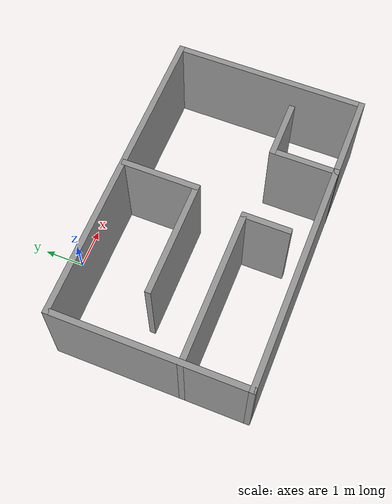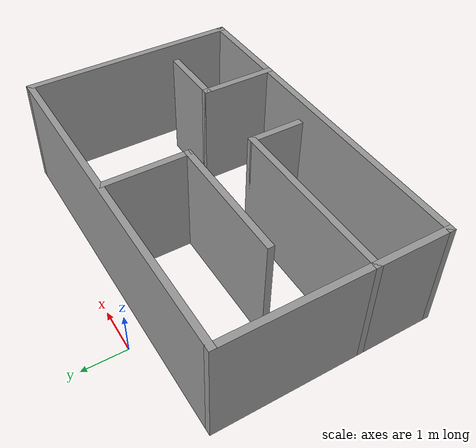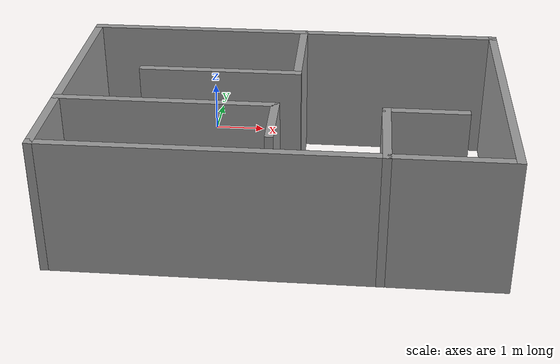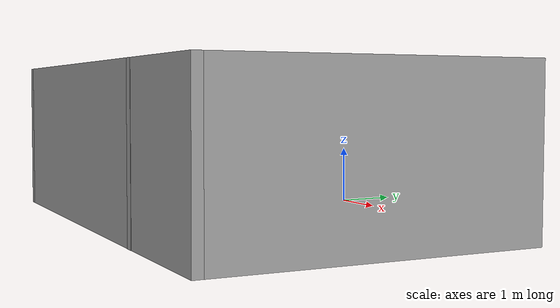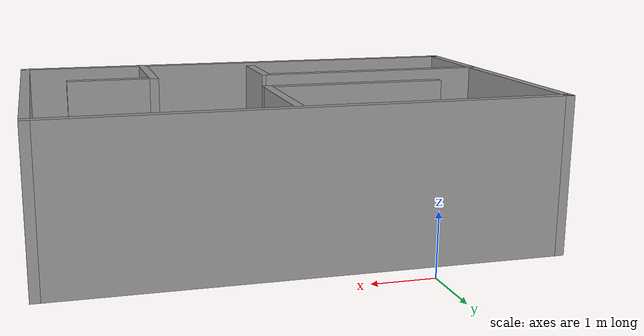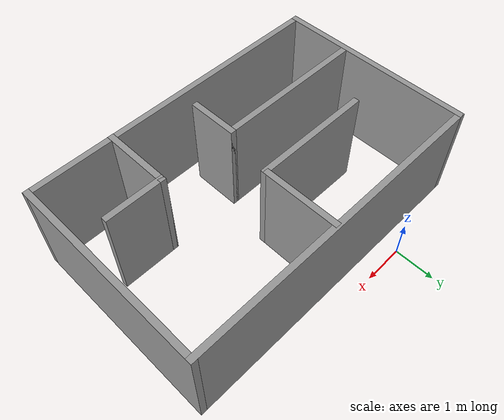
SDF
<?xml version='1.0'?>
<sdf version='1.7'>
  <model name='room'>
    <pose>1.67893 -2.72272 0 0 -0 0</pose>
    <link name='Wall_11'>
      <collision name='Wall_11_Collision'>
        <geometry>
          <box>
            <size>2 0.15 2.5</size>
          </box>
        </geometry>
        <pose>0 0 1.25 0 -0 0</pose>
      </collision>
      <visual name='Wall_11_Visual'>
        <pose>0 0 1.25 0 -0 0</pose>
        <geometry>
          <box>
            <size>2 0.15 2.5</size>
          </box>
        </geometry>
        <material>
          <script>
            <uri>file://media/materials/scripts/gazebo.material</uri>
            <name>Gazebo/Grey</name>
          </script>
          <ambient>1 1 1 1</ambient>
        </material>
        <meta>
          <layer>0</layer>
        </meta>
      </visual>
      <pose>0.214425 1.22795 0 0 -0 -1.5708</pose>
    </link>
    <link name='Wall_12'>
      <collision name='Wall_12_Collision'>
        <geometry>
          <box>
            <size>3 0.15 2.5</size>
          </box>
        </geometry>
        <pose>0 0 1.25 0 -0 0</pose>
      </collision>
      <visual name='Wall_12_Visual'>
        <pose>0 0 1.25 0 -0 0</pose>
        <geometry>
          <box>
            <size>3 0.15 2.5</size>
          </box>
        </geometry>
        <material>
          <script>
            <uri>file://media/materials/scripts/gazebo.material</uri>
            <name>Gazebo/Grey</name>
          </script>
          <ambient>1 1 1 1</ambient>
        </material>
        <meta>
          <layer>0</layer>
        </meta>
      </visual>
      <pose>-1.21057 0.302953 0 0 -0 3.14159</pose>
    </link>
    <link name='Wall_14'>
      <collision name='Wall_14_Collision'>
        <geometry>
          <box>
            <size>4 0.15 2.5</size>
          </box>
        </geometry>
        <pose>0 0 1.25 0 -0 0</pose>
      </collision>
      <visual name='Wall_14_Visual'>
        <pose>0 0 1.25 0 -0 0</pose>
        <geometry>
          <box>
            <size>4 0.15 2.5</size>
          </box>
        </geometry>
        <material>
          <script>
            <uri>file://media/materials/scripts/gazebo.material</uri>
            <name>Gazebo/Grey</name>
          </script>
          <ambient>1 1 1 1</ambient>
        </material>
        <meta>
          <layer>0</layer>
        </meta>
      </visual>
      <pose>-2 -1.00782 0 0 -0 0</pose>
    </link>
    <link name='Wall_15'>
      <collision name='Wall_15_Collision'>
        <geometry>
          <box>
            <size>1.25 0.15 2.5</size>
          </box>
        </geometry>
        <pose>0 0 1.25 0 -0 0</pose>
      </collision>
      <visual name='Wall_15_Visual'>
        <pose>0 0 1.25 0 -0 0</pose>
        <geometry>
          <box>
            <size>1.25 0.15 2.5</size>
          </box>
        </geometry>
        <material>
          <script>
            <uri>file://media/materials/scripts/gazebo.material</uri>
            <name>Gazebo/Grey</name>
          </script>
          <ambient>1 1 1 1</ambient>
        </material>
        <meta>
          <layer>0</layer>
        </meta>
      </visual>
      <pose>-0.075 -1.55782 0 0 -0 -1.5708</pose>
    </link>
    <link name='Wall_17'>
      <collision name='Wall_17_Collision'>
        <geometry>
          <box>
            <size>1.75 0.15 2.5</size>
          </box>
        </geometry>
        <pose>0 0 1.25 0 -0 0</pose>
      </collision>
      <visual name='Wall_17_Visual'>
        <pose>0 0 1.25 0 -0 0</pose>
        <geometry>
          <box>
            <size>1.75 0.15 2.5</size>
          </box>
        </geometry>
        <material>
          <script>
            <uri>file://media/materials/scripts/gazebo.material</uri>
            <name>Gazebo/Grey</name>
          </script>
          <ambient>1 1 1 1</ambient>
        </material>
        <meta>
          <layer>0</layer>
        </meta>
      </visual>
      <pose>1.8411 -1.84772 0 0 -0 1.5708</pose>
    </link>
    <link name='Wall_18'>
      <collision name='Wall_18_Collision'>
        <geometry>
          <box>
            <size>1.5 0.15 2.5</size>
          </box>
        </geometry>
        <pose>0 0 1.25 0 -0 0</pose>
      </collision>
      <visual name='Wall_18_Visual'>
        <pose>0 0 1.25 0 -0 0</pose>
        <geometry>
          <box>
            <size>1.5 0.15 2.5</size>
          </box>
        </geometry>
        <material>
          <script>
            <uri>file://media/materials/scripts/gazebo.material</uri>
            <name>Gazebo/Grey</name>
          </script>
          <ambient>1 1 1 1</ambient>
        </material>
        <meta>
          <layer>0</layer>
        </meta>
      </visual>
      <pose>2.5161 -1.04772 0 0 -0 0</pose>
    </link>
    <link name='Wall_6'>
      <collision name='Wall_6_Collision'>
        <geometry>
          <box>
            <size>8 0.15 2.5</size>
          </box>
        </geometry>
        <pose>0 0 1.25 0 -0 0</pose>
      </collision>
      <visual name='Wall_6_Visual'>
        <pose>0 0 1.25 0 -0 0</pose>
        <geometry>
          <box>
            <size>8 0.15 2.5</size>
          </box>
        </geometry>
        <material>
          <script>
            <uri>file://media/materials/scripts/gazebo.material</uri>
            <name>Gazebo/Grey</name>
          </script>
          <ambient>1 1 1 1</ambient>
        </material>
        <meta>
          <layer>0</layer>
        </meta>
      </visual>
      <pose>0 2.20585 0 0 -0 0</pose>
    </link>
    <link name='Wall_7'>
      <collision name='Wall_7_Collision'>
        <geometry>
          <box>
            <size>5 0.15 2.5</size>
          </box>
        </geometry>
        <pose>0 0 1.25 0 -0 0</pose>
      </collision>
      <visual name='Wall_7_Visual'>
        <pose>0 0 1.25 0 -0 0</pose>
        <geometry>
          <box>
            <size>5 0.15 2.5</size>
          </box>
        </geometry>
        <material>
          <script>
            <uri>file://media/materials/scripts/gazebo.material</uri>
            <name>Gazebo/Grey</name>
          </script>
          <ambient>1 1 1 1</ambient>
        </material>
        <meta>
          <layer>0</layer>
        </meta>
      </visual>
      <pose>3.925 -0.219147 0 0 -0 -1.5708</pose>
    </link>
    <link name='Wall_8'>
      <collision name='Wall_8_Collision'>
        <geometry>
          <box>
            <size>8 0.15 2.5</size>
          </box>
        </geometry>
        <pose>0 0 1.25 0 -0 0</pose>
      </collision>
      <visual name='Wall_8_Visual'>
        <pose>0 0 1.25 0 -0 0</pose>
        <geometry>
          <box>
            <size>8 0.15 2.5</size>
          </box>
        </geometry>
        <material>
          <script>
            <uri>file://media/materials/scripts/gazebo.material</uri>
            <name>Gazebo/Grey</name>
          </script>
          <ambient>1 1 1 1</ambient>
        </material>
        <meta>
          <layer>0</layer>
        </meta>
      </visual>
      <pose>0 -2.64415 0 0 -0 3.14159</pose>
    </link>
    <link name='Wall_9'>
      <collision name='Wall_9_Collision'>
        <geometry>
          <box>
            <size>5 0.15 2.5</size>
          </box>
        </geometry>
        <pose>0 0 1.25 0 -0 0</pose>
      </collision>
      <visual name='Wall_9_Visual'>
        <pose>0 0 1.25 0 -0 0</pose>
        <geometry>
          <box>
            <size>5 0.15 2.5</size>
          </box>
        </geometry>
        <material>
          <script>
            <uri>file://media/materials/scripts/gazebo.material</uri>
            <name>Gazebo/Grey</name>
          </script>
          <ambient>1 1 1 1</ambient>
        </material>
        <meta>
          <layer>0</layer>
        </meta>
      </visual>
      <pose>-3.925 -0.219147 0 0 -0 1.5708</pose>
    </link>
    <static>1</static>
  </model>
</sdf>
